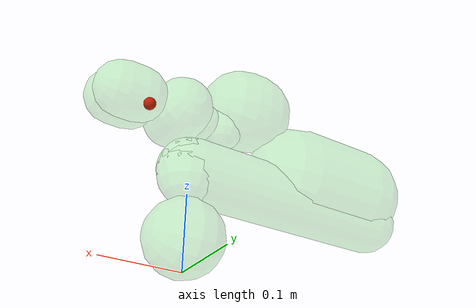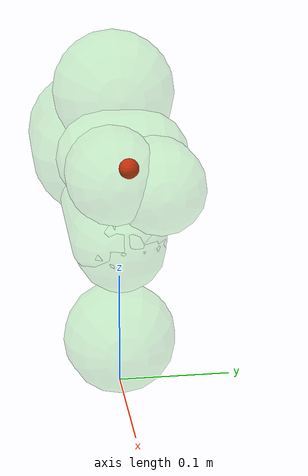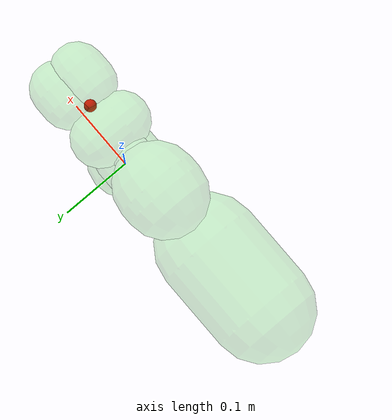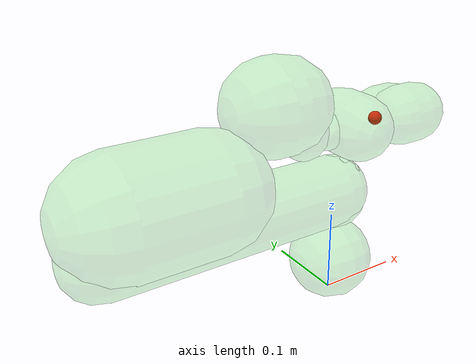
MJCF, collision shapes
<?xml version='1.0' encoding='utf-8'?>
<mujoco model="r1_lite_arm_right">
  <compiler angle="radian" meshdir="../../../../urdf/meshes" autolimits="true" eulerseq="xyz" />
  <option timestep="0.002" gravity="0 0 0" />
  <visual>
    <global offwidth="1280" offheight="720" />
  </visual>
  <default />
  <asset>
    <mesh name="right_arm_base_link" file="right_arm_base_link.STL" />
    <mesh name="right_arm_link1" file="right_arm_link1.STL" />
    <mesh name="right_arm_link2" file="right_arm_link2.STL" />
    <mesh name="right_arm_link3" file="right_arm_link3.STL" />
    <mesh name="right_arm_link4" file="right_arm_link4.STL" />
    <mesh name="right_arm_link5" file="right_arm_link5.STL" />
    <mesh name="right_arm_link6" file="right_arm_link6.STL" />
    <mesh name="right_gripper_link" file="right_gripper_link.STL" />
    <mesh name="right_gripper_finger_link1" file="right_gripper_finger_link1.STL" />
    <mesh name="right_gripper_finger_link2" file="right_gripper_finger_link2.STL" />
  </asset>
  <worldbody>
    <camera name="ego_cam" pos="0 0 0" xyaxes="1 0 0 0 -1 0" fovy="60" />
    <light name="top" pos="0 0 1.5" dir="0 0 -1" diffuse="0.8 0.8 0.8" />
    <body name="robot_anchor" mocap="true">
      <body name="right_arm_base_link">
        <geom name="right_arm_base_link_visual" type="mesh" mesh="right_arm_base_link" group="1" contype="0" conaffinity="0" rgba="0.72 0.74 0.78 1" />
        <geom name="right_arm_base_link_collision" type="capsule" group="3" contype="0" conaffinity="0" size="0.04962739" fromto="-0.00050000002 0 0.042925 0.00050000002 0 0.042925" rgba="0.2 0.8 0.2 0.25" />
        <body name="right_arm_link1" pos="0 0 0.08605">
          <joint name="right_arm_joint1" type="hinge" axis="0 0 1" range="-2.8798 2.8798" />
          <geom name="right_arm_link1_visual" type="mesh" mesh="right_arm_link1" group="1" contype="0" conaffinity="0" rgba="0.72 0.74 0.78 1" />
          <geom name="right_arm_link1_collision" type="capsule" group="3" contype="0" conaffinity="0" size="0.039500006" fromto="0 0.0009999983 0.040750004 0 0.0009999983 0.049249992" rgba="0.2 0.8 0.2 0.25" />
          <body name="right_arm_link2" pos="0 0.03075 0.04925">
            <joint name="right_arm_joint2" type="hinge" axis="0 1 0" range="0 3.1416" />
            <geom name="right_arm_link2_visual" type="mesh" mesh="right_arm_link2" group="1" contype="0" conaffinity="0" rgba="0.72 0.74 0.78 1" />
            <geom name="right_arm_link2_collision" type="capsule" group="3" contype="0" conaffinity="0" size="0.042006433" fromto="-0.28799358 -0.030743569 -0.0017359369 -0.0025058985 -0.030743569 -0.0017359369" rgba="0.2 0.8 0.2 0.25" />
            <body name="right_arm_link3" pos="-0.3 0.00025004 0">
              <joint name="right_arm_joint3" type="hinge" axis="0 1 0" range="-3.3161 0" />
              <geom name="right_arm_link3_visual" type="mesh" mesh="right_arm_link3" group="1" contype="0" conaffinity="0" rgba="0.72 0.74 0.78 1" />
              <geom name="right_arm_link3_collision" type="capsule" group="3" contype="0" conaffinity="0" size="0.067592382" fromto="0.03340058 -0.031000007 0.037592247 0.13680582 -0.031000007 0.037592247" rgba="0.2 0.8 0.2 0.25" />
              <body name="right_arm_link4" pos="0.1747 0.00049739 0.075485">
                <joint name="right_arm_joint4" type="hinge" axis="0 1 0" range="-1.5708 1.5708" />
                <geom name="right_arm_link4_visual" type="mesh" mesh="right_arm_link4" group="1" contype="0" conaffinity="0" rgba="0.72 0.74 0.78 1" />
                <geom name="right_arm_link4_collision" type="capsule" group="3" contype="0" conaffinity="0" size="0.054500006" fromto="0.037000004 -0.02699904 0.037000008 0.054000188 -0.02699904 0.037000008" rgba="0.2 0.8 0.2 0.25" />
                <body name="right_arm_link5" pos="0.08 -0.031498 0.0405">
                  <joint name="right_arm_joint5" type="hinge" axis="0 0 1" range="-1.5708 1.5708" />
                  <geom name="right_arm_link5_visual" type="mesh" mesh="right_arm_link5" group="1" contype="0" conaffinity="0" rgba="0.72 0.74 0.78 1" />
                  <geom name="right_arm_link5_collision" type="capsule" group="3" contype="0" conaffinity="0" size="0.028500002" fromto="-0.00099999923 -2.2910535e-07 -0.040500004 -0.00099999923 -2.2910535e-07 -0.034499999" rgba="0.2 0.8 0.2 0.25" />
                  <body name="right_arm_link6" pos="0.022503 0 -0.0405">
                    <joint name="right_arm_joint6" type="hinge" axis="1 0 0" range="-2.8798 2.8798" />
                    <geom name="right_arm_link6_visual" type="mesh" mesh="right_arm_link6" group="1" contype="0" conaffinity="0" rgba="0.72 0.74 0.78 1" />
                    <geom name="right_arm_link6_collision" type="capsule" group="3" contype="0" conaffinity="0" size="0.022500001" fromto="0.0065000006 -0.0026312992 1.8626451e-09 0.0065000006 0.0026312955 1.8626451e-09" rgba="0.2 0.8 0.2 0.25" />
                    <body name="right_gripper_link" pos="0.08165 0 0">
                      <geom name="right_gripper_link_visual" type="mesh" mesh="right_gripper_link" group="1" contype="0" conaffinity="0" rgba="0.72 0.74 0.78 1" />
                      <geom name="right_gripper_link_collision" type="capsule" group="3" contype="0" conaffinity="0" size="0.038325004" fromto="-0.038324997 -0.015832905 -1.4714897e-07 -0.038324997 0.015832905 -1.4714897e-07" rgba="0.2 0.8 0.2 0.25" />
                      <site name="gripper_site" pos="0 0 0" size="0.008" rgba="1 0 0 1" />
                      <body name="right_gripper_finger_link1" pos="0.03689 0.013453 0.00012059">
                        <joint name="right_gripper_finger_joint1" type="slide" axis="0 1 0" range="0 0.05" />
                        <geom name="right_gripper_finger_link1_visual" type="mesh" mesh="right_gripper_finger_link1" group="1" contype="0" conaffinity="0" rgba="0.72 0.74 0.78 1" />
                        <geom name="right_gripper_finger_link1_collision" type="capsule" group="3" contype="0" conaffinity="0" size="0.034979943" fromto="-0.015514702 -0.030202923 0.0043333946 0.0064850599 -0.030202923 0.0043333946" rgba="0.2 0.8 0.2 0.25" />
                      </body>
                      <body name="right_gripper_finger_link2" pos="0.03689 -0.013453 -0.00012059">
                        <joint name="right_gripper_finger_joint2" type="slide" axis="0 1 0" range="-0.05 0" />
                        <geom name="right_gripper_finger_link2_visual" type="mesh" mesh="right_gripper_finger_link2" group="1" contype="0" conaffinity="0" rgba="0.72 0.74 0.78 1" />
                        <geom name="right_gripper_finger_link2_collision" type="capsule" group="3" contype="0" conaffinity="0" size="0.034979943" fromto="-0.015514692 0.030202931 -0.0043333946 0.0064850617 0.030202931 -0.0043333946" rgba="0.2 0.8 0.2 0.25" />
                      </body>
                    </body>
                  </body>
                </body>
              </body>
            </body>
          </body>
        </body>
      </body>
    </body>
  </worldbody>
</mujoco>
